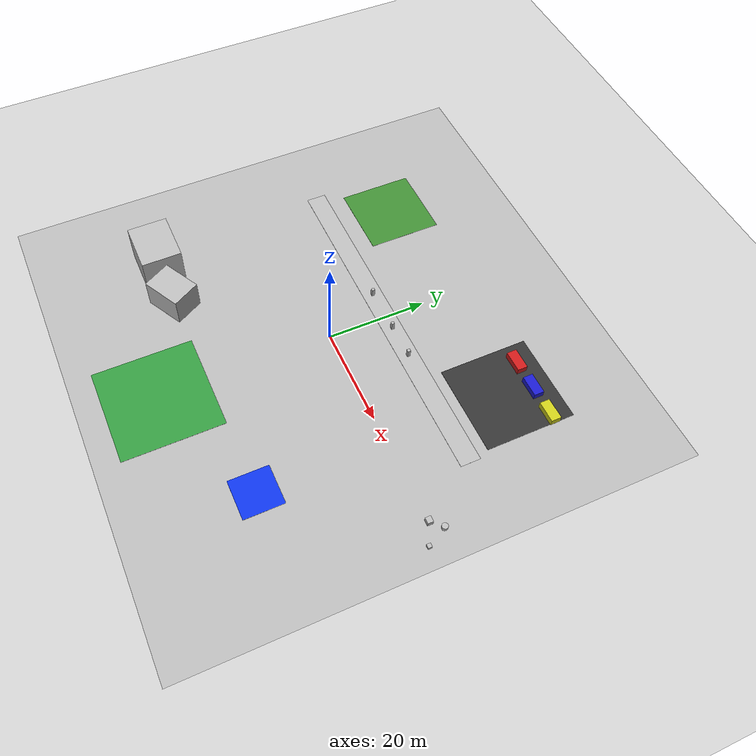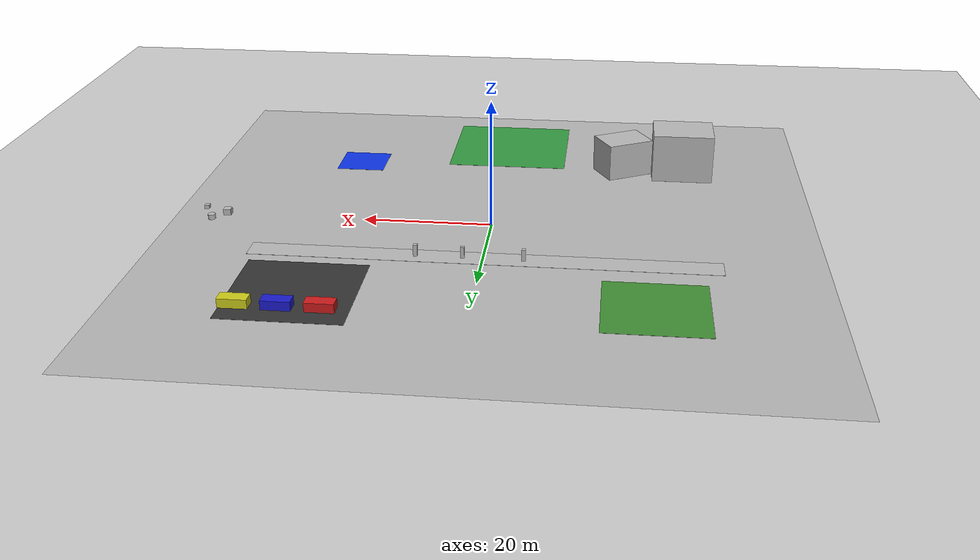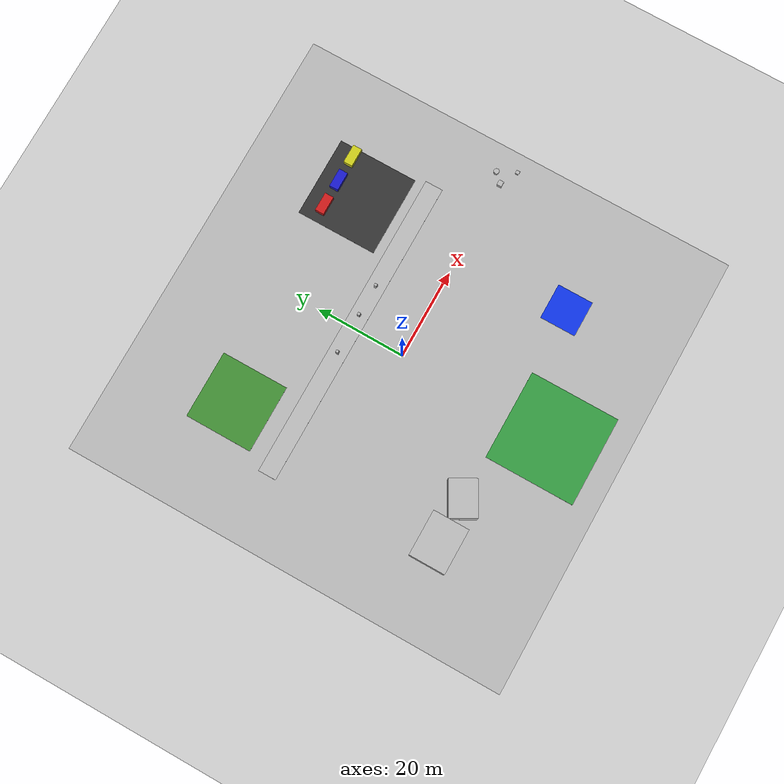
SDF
<sdf version="1.7">
 <world name="safe_landing_world">
  <include><uri>model://ground_plane</uri></include>
  <include><uri>model://sun</uri></include>
  <model name="world_boundary">
   <static>true</static>
   <link name="boundary">
    <visual name="outline">
     <geometry><box><size>100 100 0.01</size></box></geometry>
     <material><ambient>0.4 0.4 0.4 0.08</ambient><diffuse>0.4 0.4 0.4 0.08</diffuse></material>
    </visual>
   </link>
  </model>
  <model name="safe_zone_1_clearing">
   <pose>-25 25 0 0 0 0</pose>
   <static>true</static>
   <link name="link">
    <visual name="visual">
     <geometry><box><size>15 15 0.03</size></box></geometry>
     <material><ambient>0.25 0.55 0.2 1</ambient><diffuse>0.25 0.55 0.2 1</diffuse></material>
    </visual>
   </link>
  </model>
  <model name="parking_area">
   <pose>25 25 0 0 0 0</pose>
   <static>true</static>
   <link name="link">
    <visual name="visual">
     <geometry><box><size>18 18 0.03</size></box></geometry>
     <material><ambient>0.2 0.2 0.2 1</ambient><diffuse>0.2 0.2 0.2 1</diffuse></material>
    </visual>
   </link>
  </model>
  <model name="vehicle_1">
   <pose>20 30 0.7 0 0 0</pose>
   <static>true</static>
   <link name="link">
    <visual name="visual">
     <geometry><box><size>4.2 2.0 1.4</size></box></geometry>
     <material><ambient>0.8 0.1 0.1 1</ambient><diffuse>0.8 0.1 0.1 1</diffuse></material>
    </visual>
    <collision name="collision"><geometry><box><size>4.2 2.0 1.4</size></box></geometry></collision>
   </link>
  </model>
  <model name="vehicle_2">
   <pose>26 30 0.7 0 0 0</pose>
   <static>true</static>
   <link name="link">
    <visual name="visual">
     <geometry><box><size>4.2 2.0 1.4</size></box></geometry>
     <material><ambient>0.1 0.1 0.8 1</ambient><diffuse>0.1 0.1 0.8 1</diffuse></material>
    </visual>
    <collision name="collision"><geometry><box><size>4.2 2.0 1.4</size></box></geometry></collision>
   </link>
  </model>
  <model name="vehicle_3">
   <pose>32 30 0.7 0 0 0</pose>
   <static>true</static>
   <link name="link">
    <visual name="visual">
     <geometry><box><size>4.2 2.0 1.4</size></box></geometry>
     <material><ambient>0.8 0.8 0.1 1</ambient><diffuse>0.8 0.8 0.1 1</diffuse></material>
    </visual>
    <collision name="collision"><geometry><box><size>4.2 2.0 1.4</size></box></geometry></collision>
   </link>
  </model>
  <model name="unsafe_water">
   <pose>25 -25 0 0 0 0</pose>
   <static>true</static>
   <link name="link">
    <visual name="visual">
     <geometry><box><size>8 8 0.02</size></box></geometry>
     <material><ambient>0.05 0.2 0.9 1</ambient><diffuse>0.05 0.2 0.9 1</diffuse></material>
    </visual>
   </link>
  </model>
  <model name="building_flat_roof">
   <pose>-30 -25 4 0 0 0</pose>
   <static>true</static>
   <link name="link">
    <visual name="visual"><geometry><box><size>10 8 8</size></box></geometry></visual>
    <collision name="collision"><geometry><box><size>10 8 8</size></box></geometry></collision>
   </link>
  </model>
  <model name="building_sloped_roof">
   <pose>-20 -25 3 0 0 0.5</pose>
   <static>true</static>
   <link name="link">
    <visual name="visual"><geometry><box><size>8 6 6</size></box></geometry></visual>
    <collision name="collision"><geometry><box><size>8 6 6</size></box></geometry></collision>
   </link>
  </model>
  <model name="debris_1">
   <pose>42 0 0.5 0 0 0</pose>
   <static>true</static>
   <link name="l"><visual name="v"><geometry><box><size>1.2 1.1 1</size></box></geometry></visual></link>
  </model>
  <model name="debris_2">
   <pose>44 2 0.4 0 0 0</pose>
   <static>true</static>
   <link name="l">
    <visual name="v"><geometry><cylinder><radius>0.6</radius><length>0.8</length></cylinder></geometry></visual>
   </link>
  </model>
  <model name="debris_3">
   <pose>46 -2 0.3 0 0 0</pose>
   <static>true</static>
   <link name="l"><visual name="v"><geometry><box><size>0.8 0.8 0.6</size></box></geometry></visual></link>
  </model>
  <model name="safe_zone_2_grass">
   <pose>0 -35 0 0 0 0</pose>
   <static>true</static>
   <link name="link">
    <visual name="visual">
     <geometry><box><size>20 20 0.03</size></box></geometry>
     <material><ambient>0.2 0.6 0.25 1</ambient><diffuse>0.2 0.6 0.25 1</diffuse></material>
    </visual>
   </link>
  </model>
  <model name="road_surface">
   <pose>0 12 0 0 0 0</pose>
   <static>true</static>
   <link name="link"><visual name="visual"><geometry><box><size>70 4 0.02</size></box></geometry></visual></link>
  </model>
  <model name="pedestrian_1">
   <pose>-6 12 0.9 0 0 0</pose>
   <static>true</static>
   <link name="link">
    <visual name="visual"><geometry><box><size>0.6 0.6 1.8</size></box></geometry></visual>
   </link>
  </model>
  <model name="pedestrian_2">
   <pose>3 12 0.9 0 0 0</pose>
   <static>true</static>
   <link name="link">
    <visual name="visual"><geometry><box><size>0.6 0.6 1.8</size></box></geometry></visual>
   </link>
  </model>
  <model name="pedestrian_3">
   <pose>10 12 0.9 0 0 0</pose>
   <static>true</static>
   <link name="link">
    <visual name="visual"><geometry><box><size>0.6 0.6 1.8</size></box></geometry></visual>
   </link>
  </model>
 </world>
</sdf>
